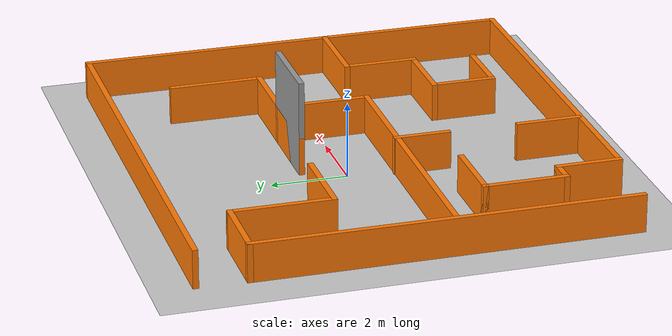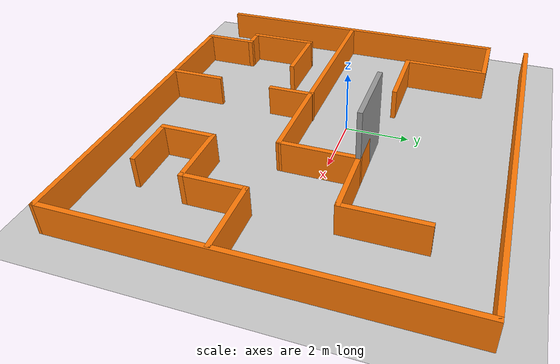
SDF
<sdf version="1.6">
 <world name="default">
  <model name="ground_plane">
   <static>1</static>
   <link name="link">
    <collision name="collision">
     <geometry><plane><normal>0 0 1</normal><size>100 100</size></plane></geometry>
     <surface><friction><ode><mu>100</mu><mu2>50</mu2></ode></friction></surface>
    </collision>
    <visual name="visual">
     <cast_shadows>0</cast_shadows>
     <geometry><plane><normal>0 0 1</normal><size>100 100</size></plane></geometry>
     <material>
      <script><uri>file://media/materials/scripts/gazebo.material</uri><name>Gazebo/Grey</name></script>
     </material>
    </visual>
   </link>
  </model>
  <light name="sun" type="directional">
   <pose>0 0 10 0 -0 0</pose>
   <diffuse>0.8 0.8 0.8 1</diffuse>
   <specular>0.1 0.1 0.1 1</specular>
   <attenuation>
    <range>1000</range>
    <constant>0.9</constant>
    <linear>0.01</linear>
    <quadratic>0.001</quadratic>
   </attenuation>
   <direction>-0.5 0.5 -1</direction>
  </light>
  <gravity>0 0 -9.8</gravity>
  <magnetic_field>6e-06 2.3e-05 -4.2e-05</magnetic_field>
  <atmosphere type="adiabatic"/>
  <physics name="default_physics" default="0" type="ode">
   <max_step_size>0.001</max_step_size>
   <real_time_factor>1</real_time_factor>
   <real_time_update_rate>1000</real_time_update_rate>
  </physics>
  <scene><ambient>0.4 0.4 0.4 1</ambient><background>0.7 0.7 0.7 1</background><shadows>1</shadows></scene>
  <spherical_coordinates>
   <surface_model>EARTH_WGS84</surface_model>
   <latitude_deg>0</latitude_deg>
   <longitude_deg>0</longitude_deg>
   <elevation>0</elevation>
   <heading_deg>0</heading_deg>
  </spherical_coordinates>
  <model name="mybot_maze">
   <pose>0.890162 -0.490303 0 0 -0 0</pose>
   <link name="Wall_13">
    <collision name="Wall_13_Collision">
     <geometry><box><size>10 0.15 1</size></box></geometry>
     <pose>0 0 0.5 0 -0 0</pose>
    </collision>
    <visual name="Wall_13_Visual">
     <pose>0 0 0.5 0 -0 0</pose>
     <geometry><box><size>10 0.15 1</size></box></geometry>
     <material>
      <script><uri>file://media/materials/scripts/gazebo.material</uri><name>Gazebo/Grey</name></script>
      <ambient>0.996078 0.47451 0.0196078 1</ambient>
     </material>
    </visual>
    <pose>1.06416 -5.66738 0 0 -0 3.14159</pose>
   </link>
   <link name="Wall_16">
    <collision name="Wall_16_Collision">
     <geometry><box><size>2 0.15 1</size></box></geometry>
     <pose>0 0 0.5 0 -0 0</pose>
    </collision>
    <visual name="Wall_16_Visual">
     <pose>0 0 0.5 0 -0 0</pose>
     <geometry><box><size>2 0.15 1</size></box></geometry>
     <material>
      <script><uri>file://media/materials/scripts/gazebo.material</uri><name>Gazebo/Grey</name></script>
      <ambient>0.996078 0.47451 0.0196078 1</ambient>
     </material>
    </visual>
    <pose>-5.06784 4.35962 0 0 -0 0</pose>
   </link>
   <link name="Wall_17">
    <collision name="Wall_17_Collision">
     <geometry><box><size>2.75 0.15 0.999</size></box></geometry>
     <pose>0 0 0.4995 0 -0 0</pose>
    </collision>
    <visual name="Wall_17_Visual">
     <pose>0 0 0.4995 0 -0 0</pose>
     <geometry><box><size>2.75 0.15 0.999</size></box></geometry>
     <material>
      <script><uri>file://media/materials/scripts/gazebo.material</uri><name>Gazebo/Grey</name></script>
      <ambient>0.996078 0.47451 0.0196078 1</ambient>
     </material>
    </visual>
    <pose>-4.14284 3.05962 0 0 0 -1.5708</pose>
   </link>
   <link name="Wall_18">
    <collision name="Wall_18_Collision">
     <geometry><box><size>2.25 0.15 1</size></box></geometry>
     <pose>0 0 0.5 0 -0 0</pose>
    </collision>
    <visual name="Wall_18_Visual">
     <pose>0 0 0.5 0 -0 0</pose>
     <geometry><box><size>2.25 0.15 1</size></box></geometry>
     <material>
      <script><uri>file://media/materials/scripts/gazebo.material</uri><name>Gazebo/Grey</name></script>
      <ambient>0.996078 0.47451 0.0196078 1</ambient>
     </material>
    </visual>
    <pose>-3.09284 1.75962 0 0 -0 0</pose>
   </link>
   <link name="Wall_2">
    <collision name="Wall_2_Collision">
     <geometry><box><size>12 0.15 1</size></box></geometry>
     <pose>0 0 0.5 0 -0 0</pose>
    </collision>
    <visual name="Wall_2_Visual">
     <pose>0 0 0.5 0 -0 0</pose>
     <geometry><box><size>12 0.15 1</size></box></geometry>
     <material>
      <script><uri>file://media/materials/scripts/gazebo.material</uri><name>Gazebo/Grey</name></script>
      <ambient>0.996078 0.47451 0.0196078 1</ambient>
     </material>
    </visual>
    <pose>-0.018003 5.66738 0 0 -0 0</pose>
   </link>
   <link name="Wall_20">
    <collision name="Wall_20_Collision">
     <geometry><box><size>7.75009 0.15 1</size></box></geometry>
     <pose>0 0 0.5 0 -0 0</pose>
    </collision>
    <visual name="Wall_20_Visual">
     <pose>0 0 0.5 0 -0 0</pose>
     <geometry><box><size>7.75009 0.15 1</size></box></geometry>
     <material>
      <script><uri>file://media/materials/scripts/gazebo.material</uri><name>Gazebo/Grey</name></script>
      <ambient>0.996078 0.47451 0.0196078 1</ambient>
     </material>
    </visual>
    <pose>-2.09984 -0.772376 0 0 0 -0.004737</pose>
   </link>
   <link name="Wall_21">
    <collision name="Wall_21_Collision">
     <geometry><box><size>2.5 0.15 1</size></box></geometry>
     <pose>0 0 0.5 0 -0 0</pose>
    </collision>
    <visual name="Wall_21_Visual">
     <pose>0 0 0.5 0 -0 0</pose>
     <geometry><box><size>2.5 0.15 1</size></box></geometry>
     <material>
      <script><uri>file://media/materials/scripts/gazebo.material</uri><name>Gazebo/Grey</name></script>
      <ambient>0.996078 0.47451 0.0196078 1</ambient>
     </material>
    </visual>
    <pose>1.70016 0.384624 0 0 -0 1.5708</pose>
   </link>
   <link name="Wall_23">
    <collision name="Wall_23_Collision">
     <geometry><box><size>2.25 0.15 2.5</size></box></geometry>
     <pose>0 0 1.25 0 -0 0</pose>
    </collision>
    <visual name="Wall_23_Visual">
     <pose>0 0 1.25 0 -0 0</pose>
     <geometry><box><size>2.25 0.15 2.5</size></box></geometry>
     <material>
      <script><uri>file://media/materials/scripts/gazebo.material</uri><name>Gazebo/Grey</name></script>
      <ambient>1 1 1 1</ambient>
     </material>
    </visual>
    <pose>0.650163 1.55962 0 0 -0 3.14159</pose>
   </link>
   <link name="Wall_24">
    <collision name="Wall_24_Collision">
     <geometry><box><size>4.25 0.15 1</size></box></geometry>
     <pose>0 0 0.5 0 -0 0</pose>
    </collision>
    <visual name="Wall_24_Visual">
     <pose>0 0 0.5 0 -0 0</pose>
     <geometry><box><size>4.25 0.15 1</size></box></geometry>
     <material>
      <script><uri>file://media/materials/scripts/gazebo.material</uri><name>Gazebo/Grey</name></script>
      <ambient>0.996078 0.47451 0.0196078 1</ambient>
     </material>
    </visual>
    <pose>1.65016 1.55962 0 0 -0 0</pose>
   </link>
   <link name="Wall_25">
    <collision name="Wall_25_Collision">
     <geometry><box><size>2.5 0.15 1</size></box></geometry>
     <pose>0 0 0.5 0 -0 0</pose>
    </collision>
    <visual name="Wall_25_Visual">
     <pose>0 0 0.5 0 -0 0</pose>
     <geometry><box><size>2.5 0.15 1</size></box></geometry>
     <material>
      <script><uri>file://media/materials/scripts/gazebo.material</uri><name>Gazebo/Grey</name></script>
      <ambient>0.996078 0.47451 0.0196078 1</ambient>
     </material>
    </visual>
    <pose>3.70016 2.73462 0 0 -0 1.5708</pose>
   </link>
   <link name="Wall_28">
    <collision name="Wall_28_Collision">
     <geometry><box><size>2.25 0.15 1</size></box></geometry>
     <pose>0 0 0.5 0 -0 0</pose>
    </collision>
    <visual name="Wall_28_Visual">
     <pose>0 0 0.5 0 -0 0</pose>
     <geometry><box><size>2.25 0.15 1</size></box></geometry>
     <material>
      <script><uri>file://media/materials/scripts/gazebo.material</uri><name>Gazebo/Grey</name></script>
      <ambient>0.996078 0.47451 0.0196078 1</ambient>
     </material>
    </visual>
    <pose>4.89516 -0.871376 0 0 -0 3.14159</pose>
   </link>
   <link name="Wall_29">
    <collision name="Wall_29_Collision">
     <geometry><box><size>2 0.15 1</size></box></geometry>
     <pose>0 0 0.5 0 -0 0</pose>
    </collision>
    <visual name="Wall_29_Visual">
     <pose>0 0 0.5 0 -0 0</pose>
     <geometry><box><size>2 0.15 1</size></box></geometry>
     <material>
      <script><uri>file://media/materials/scripts/gazebo.material</uri><name>Gazebo/Grey</name></script>
      <ambient>0.996078 0.47451 0.0196078 1</ambient>
     </material>
    </visual>
    <pose>3.84516 -1.79638 0 0 0 -1.5708</pose>
   </link>
   <link name="Wall_3">
    <collision name="Wall_3_Collision">
     <geometry><box><size>11.4851 0.15 1</size></box></geometry>
     <pose>0 0 0.5 0 -0 0</pose>
    </collision>
    <visual name="Wall_3_Visual">
     <pose>0 0 0.5 0 -0 0</pose>
     <geometry><box><size>11.4851 0.15 1</size></box></geometry>
     <material>
      <script><uri>file://media/materials/scripts/gazebo.material</uri><name>Gazebo/Grey</name></script>
      <ambient>0.996078 0.47451 0.0196078 1</ambient>
     </material>
    </visual>
    <pose>5.99099 0 0 0 0 -1.57112</pose>
   </link>
   <link name="Wall_30">
    <collision name="Wall_30_Collision">
     <geometry><box><size>2 0.15 1</size></box></geometry>
     <pose>0 0 0.5 0 -0 0</pose>
    </collision>
    <visual name="Wall_30_Visual">
     <pose>0 0 0.5 0 -0 0</pose>
     <geometry><box><size>2 0.15 1</size></box></geometry>
     <material>
      <script><uri>file://media/materials/scripts/gazebo.material</uri><name>Gazebo/Grey</name></script>
      <ambient>0.996078 0.47451 0.0196078 1</ambient>
     </material>
    </visual>
    <pose>2.92016 -2.72138 0 0 -0 3.14159</pose>
   </link>
   <link name="Wall_31">
    <collision name="Wall_31_Collision">
     <geometry><box><size>1.75 0.15 1</size></box></geometry>
     <pose>0 0 0.5 0 -0 0</pose>
    </collision>
    <visual name="Wall_31_Visual">
     <pose>0 0 0.5 0 -0 0</pose>
     <geometry><box><size>1.75 0.15 1</size></box></geometry>
     <material>
      <script><uri>file://media/materials/scripts/gazebo.material</uri><name>Gazebo/Grey</name></script>
      <ambient>0.996078 0.47451 0.0196078 1</ambient>
     </material>
    </visual>
    <pose>1.99516 -3.52138 0 0 0 -1.5708</pose>
   </link>
   <link name="Wall_32">
    <collision name="Wall_32_Collision">
     <geometry><box><size>1.75 0.15 1</size></box></geometry>
     <pose>0 0 0.5 0 -0 0</pose>
    </collision>
    <visual name="Wall_32_Visual">
     <pose>0 0 0.5 0 -0 0</pose>
     <geometry><box><size>1.75 0.15 1</size></box></geometry>
     <material>
      <script><uri>file://media/materials/scripts/gazebo.material</uri><name>Gazebo/Grey</name></script>
      <ambient>0.996078 0.47451 0.0196078 1</ambient>
     </material>
    </visual>
    <pose>2.79516 -4.32138 0 0 -0 0</pose>
   </link>
   <link name="Wall_34">
    <collision name="Wall_34_Collision">
     <geometry><box><size>1.75 0.15 1</size></box></geometry>
     <pose>0 0 0.5 0 -0 0</pose>
    </collision>
    <visual name="Wall_34_Visual">
     <pose>0 0 0.5 0 -0 0</pose>
     <geometry><box><size>1.75 0.15 1</size></box></geometry>
     <material>
      <script><uri>file://media/materials/scripts/gazebo.material</uri><name>Gazebo/Grey</name></script>
      <ambient>0.996078 0.47451 0.0196078 1</ambient>
     </material>
    </visual>
    <pose>-1.07784 -4.80538 0 0 -0 1.5708</pose>
   </link>
   <link name="Wall_37">
    <collision name="Wall_37_Collision">
     <geometry><box><size>1.5 0.15 1</size></box></geometry>
     <pose>0 0 0.5 0 -0 0</pose>
    </collision>
    <visual name="Wall_37_Visual">
     <pose>0 0 0.5 0 -0 0</pose>
     <geometry><box><size>1.5 0.15 1</size></box></geometry>
     <material>
      <script><uri>file://media/materials/scripts/gazebo.material</uri><name>Gazebo/Grey</name></script>
      <ambient>0.996078 0.47451 0.0196078 1</ambient>
     </material>
    </visual>
    <pose>-1.04584 -1.43338 0 0 0 -1.5708</pose>
   </link>
   <link name="Wall_39">
    <collision name="Wall_39_Collision">
     <geometry><box><size>1.75 0.15 1</size></box></geometry>
     <pose>0 0 0.5 0 -0 0</pose>
    </collision>
    <visual name="Wall_39_Visual">
     <pose>0 0 0.5 0 -0 0</pose>
     <geometry><box><size>1.75 0.15 1</size></box></geometry>
     <material>
      <script><uri>file://media/materials/scripts/gazebo.material</uri><name>Gazebo/Grey</name></script>
      <ambient>0.996078 0.47451 0.0196078 1</ambient>
     </material>
    </visual>
    <pose>-3.86084 -4.86738 0 0 -0 1.5708</pose>
   </link>
   <link name="Wall_40">
    <collision name="Wall_40_Collision">
     <geometry><box><size>0.75 0.15 0.999</size></box></geometry>
     <pose>0 0 0.4995 0 -0 0</pose>
    </collision>
    <visual name="Wall_40_Visual">
     <pose>0 0 0.4995 0 -0 0</pose>
     <geometry><box><size>0.75 0.15 0.999</size></box></geometry>
     <material>
      <script><uri>file://media/materials/scripts/gazebo.material</uri><name>Gazebo/Grey</name></script>
      <ambient>0.996078 0.47451 0.0196078 1</ambient>
     </material>
    </visual>
    <pose>-4.16084 -4.06738 0 0 -0 3.14159</pose>
   </link>
   <link name="Wall_41">
    <collision name="Wall_41_Collision">
     <geometry><box><size>2.25 0.15 1</size></box></geometry>
     <pose>0 0 0.5 0 -0 0</pose>
    </collision>
    <visual name="Wall_41_Visual">
     <pose>0 0 0.5 0 -0 0</pose>
     <geometry><box><size>2.25 0.15 1</size></box></geometry>
     <material>
      <script><uri>file://media/materials/scripts/gazebo.material</uri><name>Gazebo/Grey</name></script>
      <ambient>0.996078 0.47451 0.0196078 1</ambient>
     </material>
    </visual>
    <pose>-4.46084 -3.01738 0 0 -0 1.5708</pose>
   </link>
   <link name="Wall_42">
    <collision name="Wall_42_Collision">
     <geometry><box><size>2 0.15 1</size></box></geometry>
     <pose>0 0 0.5 0 -0 0</pose>
    </collision>
    <visual name="Wall_42_Visual">
     <pose>0 0 0.5 0 -0 0</pose>
     <geometry><box><size>2 0.15 1</size></box></geometry>
     <material>
      <script><uri>file://media/materials/scripts/gazebo.material</uri><name>Gazebo/Grey</name></script>
      <ambient>0.996078 0.47451 0.0196078 1</ambient>
     </material>
    </visual>
    <pose>-3.53584 -1.96738 0 0 -0 0</pose>
   </link>
   <link name="Wall_7">
    <collision name="Wall_7_Collision">
     <geometry><box><size>10 0.15 1</size></box></geometry>
     <pose>0 0 0.5 0 -0 0</pose>
    </collision>
    <visual name="Wall_7_Visual">
     <pose>0 0 0.5 0 -0 0</pose>
     <geometry><box><size>10 0.15 1</size></box></geometry>
     <material>
      <script><uri>file://media/materials/scripts/gazebo.material</uri><name>Gazebo/Grey</name></script>
      <ambient>0.996078 0.47451 0.0196078 1</ambient>
     </material>
    </visual>
    <pose>-5.99284 -0.565376 0 0 0 -1.5708</pose>
   </link>
   <static>1</static>
  </model>
 </world>
</sdf>
